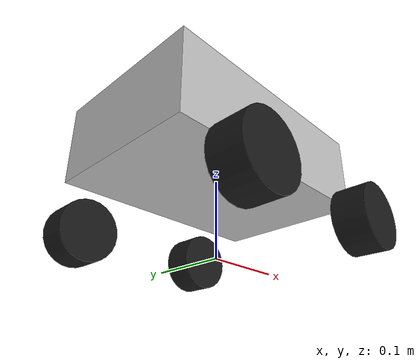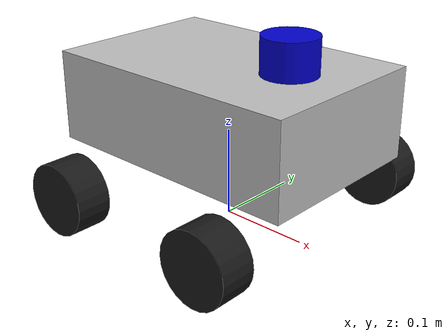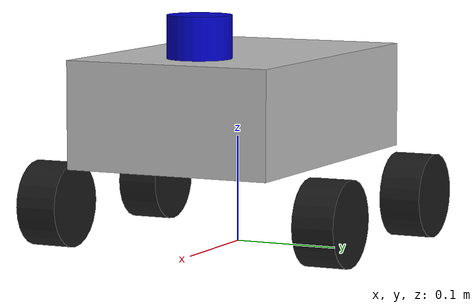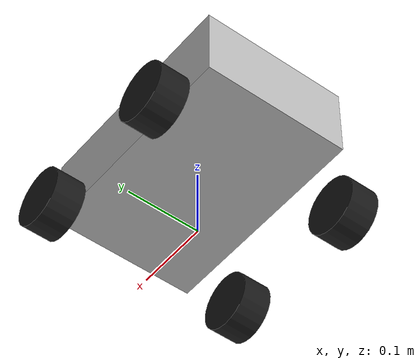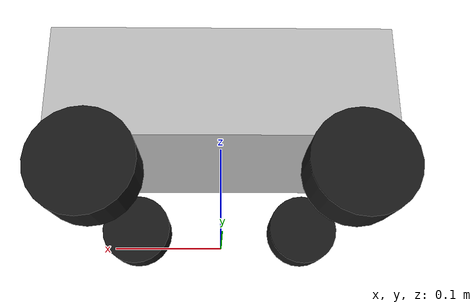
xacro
<?xml version="1.0"?>
<robot xmlns:xacro="http://www.ros.org/wiki/xacro" name="r550_robot">

    <!-- 1. 物理参数定义 -->
    <xacro:property name="base_length" value="0.30"/>
    <xacro:property name="base_width" value="0.20"/>
    <xacro:property name="base_height" value="0.10"/>
    <xacro:property name="wheel_radius" value="0.04"/>
    <xacro:property name="wheel_width" value="0.04"/>
    <xacro:property name="wheel_ygap" value="0.02"/>
    <xacro:property name="wheel_xoff" value="0.10"/>
    <xacro:property name="wheel_zoff" value="0.04"/>

    <!-- 【计算防错】：直接预设轮子在 Y 轴的精确坐标 0.14m (0.10 + 0.02 + 0.02)，完全避免 Xacro 加减法计算冲突 -->
    <xacro:property name="wheel_yoff" value="0.14"/>

    <!-- 2. 惯性矩阵宏定义 -->
    <xacro:macro name="inertial_box" params="mass x y z">
        <inertial>
            <mass value="${mass}"/>
            <inertia ixx="${(1/12)*mass*(y*y+z*z)}" ixy="0.0" ixz="0.0"
                     iyy="${(1/12)*mass*(x*x+z*z)}" iyz="0.0"
                     izz="${(1/12)*mass*(x*x+y*y)}"/>
        </inertial>
    </xacro:macro>

    <xacro:macro name="inertial_cylinder" params="mass radius length">
        <inertial>
            <origin xyz="0 0 0" rpy="0 0 0"/>
            <mass value="${mass}"/>
            <!-- 【物理稳定化】：人工注入高稳定性惯性数值，确保物理求解器稳如磐石 -->
            <inertia ixx="0.001" ixy="0.0" ixz="0.0"
                     iyy="0.002" iyz="0.0"
                     izz="0.001"/>
        </inertial>
    </xacro:macro>

    <!-- 3. 机器人原点和基础坐标系 -->
    <link name="base_footprint"/>

    <joint name="base_joint" type="fixed">
        <parent link="base_footprint"/>
        <child link="base_link"/>
        <origin xyz="0 0 ${wheel_radius + wheel_zoff}" rpy="0 0 0"/>
    </joint>

    <!-- 4. 车身底盘（Chassis Link） -->
    <link name="base_link">
        <visual>
            <origin xyz="0 0 ${base_height/2}"/>
            <geometry>
                <box size="${base_length} ${base_width} ${base_height}"/>
            </geometry>
            <material name="silver">
                <color rgba="0.75 0.75 0.75 1.0"/>
            </material>
        </visual>
        <collision>
            <origin xyz="0 0 ${base_height/2}"/>
            <geometry>
                <box size="${base_length - 0.02} ${base_width - 0.02} ${base_height - 0.02}"/>
            </geometry>
        </collision>
        <xacro:inertial_box mass="5.0" x="${base_length}" y="${base_width}" z="${base_height}"/>
    </link>

    <gazebo reference="base_link">
        <material>Gazebo/Grey</material>
    </gazebo>

    <!-- 5. 轮子宏定义 -->
    <xacro:macro name="wheel" params="prefix x_reflect y_reflect">
        <link name="${prefix}_wheel">
            <visual>
                <origin xyz="0 0 0" rpy="${pi/2} 0 0"/>
                <geometry>
                    <cylinder radius="${wheel_radius}" length="${wheel_width}"/>
                </geometry>
                <material name="black">
                    <color rgba="0.1 0.1 0.1 1.0"/>
                </material>
            </visual>
            <collision>
                <origin xyz="0 0 0" rpy="${pi/2} 0 0"/>
                <geometry>
                    <cylinder radius="${wheel_radius}" length="${wheel_width}"/>
                </geometry>
            </collision>
            <xacro:inertial_cylinder mass="0.5" radius="${wheel_radius}" length="${wheel_width}"/>
        </link>

        <joint name="${prefix}_wheel_joint" type="continuous">
            <parent link="base_link"/>
            <child link="${prefix}_wheel"/>
            <!-- 极简无冲突坐标拼接，彻底消灭乘法 Bug -->
            <origin xyz="${x_reflect * wheel_xoff} ${y_reflect * wheel_yoff} ${-wheel_zoff}" rpy="0 0 0"/>
            <axis xyz="0 1 0"/>
            <!-- 【接触力学优化 1】：将关节阻尼和摩擦力设为极低值 0.001，给小车轴承涂上完美的虚拟润滑油 -->
            <dynamics damping="0.001" friction="0.001"/>
        </joint>

        <gazebo reference="${prefix}_wheel">
            <material>Gazebo/Black</material>
            <mu1>0.5</mu1>
            <mu2>0.05</mu2>
            <fdir1>1 0 0</fdir1>
            <kp>1000000.0</kp>
            <kd>100.0</kd>
            <minDepth>0.001</minDepth>
            <maxVel>0.1</maxVel>
        </gazebo>
    </xacro:macro>

    <!-- 实例化4个轮子 -->
    <xacro:wheel prefix="front_left"  x_reflect="1"  y_reflect="1"/>
    <xacro:wheel prefix="front_right" x_reflect="1"  y_reflect="-1"/>
    <xacro:wheel prefix="back_left"   x_reflect="-1" y_reflect="1"/>
    <xacro:wheel prefix="back_right"  x_reflect="-1" y_reflect="-1"/>

    <!-- 6. 激光雷达（LiDAR）部分 -->
    <link name="laser_link">
        <visual>
            <geometry>
                <cylinder radius="0.03" length="0.04"/>
            </geometry>
            <material name="blue">
                <color rgba="0.0 0.0 0.8 1.0"/>
            </material>
        </visual>
        <collision>
            <geometry>
                <cylinder radius="0.03" length="0.04"/>
            </geometry>
        </collision>
        <inertial>
            <mass value="0.1"/>
            <inertia ixx="0.001" ixy="0" ixz="0" iyy="0.001" iyz="0" izz="0.001"/>
        </inertial>
    </link>

    <joint name="laser_joint" type="fixed">
        <parent link="base_link"/>
        <child link="laser_link"/>
        <origin xyz="0.08 0 ${base_height + 0.02}" rpy="0 0 0"/>
    </joint>

    <!-- 7. Gazebo 激光雷达传感器插件 -->
    <gazebo reference="laser_link">
        <material>Gazebo/Blue</material>
        <sensor name="lidar" type="ray">
            <pose>0 0 0 0 0 0</pose>
            <always_on>true</always_on>
            <update_rate>10</update_rate>
            <visualize>true</visualize>
            <ray>
                <scan>
                    <horizontal>
                        <samples>360</samples>
                        <resolution>1</resolution>
                        <min_angle>-3.14159265</min_angle>
                        <max_angle>3.14159265</max_angle>
                    </horizontal>
                </scan>
                <range>
                    <min>0.28</min>
                    <max>12.0</max>
                    <resolution>0.01</resolution>
                </range>
                <noise>
                    <type>gaussian</type>
                    <mean>0.0</mean>
                    <stddev>0.01</stddev>
                </noise>
            </ray>
            <plugin name="laser_controller" filename="libgazebo_ros_ray_sensor.so">
                <ros>
                    <remapping>~/out:=scan</remapping>
                </ros>
                <output_type>sensor_msgs/LaserScan</output_type>
                <frame_name>laser_link</frame_name>
            </plugin>
        </sensor>
    </gazebo>

    <!-- 8. 四驱滑移控制器插件 -->
    <gazebo>
        <plugin name="skid_steer_drive" filename="libgazebo_ros_diff_drive.so">
            <ros>
                <remapping>cmd_vel:=cmd_vel</remapping>
                <remapping>odom:=odom</remapping>
            </ros>
            <update_rate>50</update_rate>
            <num_wheel_pairs>2</num_wheel_pairs>

            <left_joint>front_left_wheel_joint</left_joint>
            <left_joint>back_left_wheel_joint</left_joint>

            <right_joint>front_right_wheel_joint</right_joint>
            <right_joint>back_right_wheel_joint</right_joint>

            <wheel_separation>0.28</wheel_separation>
            <wheel_separation>0.28</wheel_separation>

            <wheel_diameter>0.08</wheel_diameter>
            <wheel_diameter>0.08</wheel_diameter>

            <!-- 限制最大扭矩以确保 Gazebo ODE 物理求解器稳定运行，防止关节瞬间撕裂或物理锁死 -->
            <max_wheel_torque>15.0</max_wheel_torque>

            <publish_odom>true</publish_odom>
            <publish_odom_tf>true</publish_odom_tf>
            <!-- 彻底关闭 Gazebo 内部不稳定的轮子 TF 发布 -->
            <publish_wheel_tf>false</publish_wheel_tf>
            <publish_wheel_joint_state>false</publish_wheel_joint_state>
            <odometry_frame>odom</odometry_frame>
            <robot_base_frame>base_footprint</robot_base_frame>
        </plugin>
    </gazebo>

    <!-- 9. 【核心修复 3 - 关节状态发布器插件】：确保 RViz2 100% 接收到轮子旋转数据
         直接在 URDF 里调用官方最稳定的 Joint State Publisher，强行向整个 ROS 2 网络广播轮子关节数据。
         这可以保证无论你在 Foxglove 还是在本地 RViz2 里看，轮子都会 100% 出现并跟随车身运动！ -->
    <gazebo>
        <plugin name="gazebo_ros_joint_state_publisher" filename="libgazebo_ros_joint_state_publisher.so">
            <ros>
                <remapping>~/out:=joint_states</remapping>
            </ros>
            <update_rate>50</update_rate>
            <joint_name>front_left_wheel_joint</joint_name>
            <joint_name>front_right_wheel_joint</joint_name>
            <joint_name>back_left_wheel_joint</joint_name>
            <joint_name>back_right_wheel_joint</joint_name>
        </plugin>
    </gazebo>

</robot>
